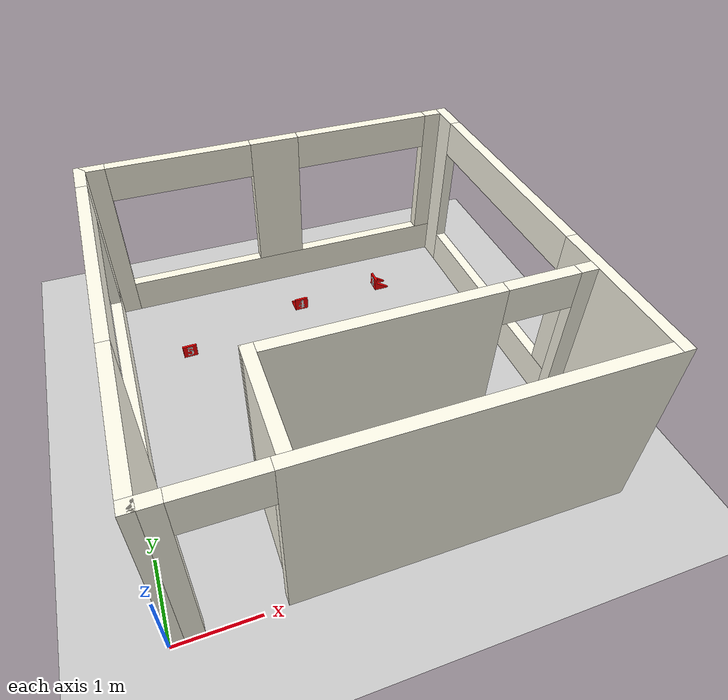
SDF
<sdf version="1.6">
 <world name="default">
  <light name="sun" type="directional">
   <pose>0 0 10 0 -0 0</pose>
   <diffuse>0.8 0.8 0.8 1</diffuse>
   <specular>0.2 0.2 0.2 1</specular>
   <attenuation>
    <range>1000</range>
    <constant>0.9</constant>
    <linear>0.01</linear>
    <quadratic>0.001</quadratic>
   </attenuation>
   <direction>-0.5 0.1 -0.9</direction>
  </light>
  <model name="ground_plane">
   <static>1</static>
   <link name="link">
    <collision name="collision">
     <geometry><plane><normal>0 0 1</normal><size>100 100</size></plane></geometry>
     <surface>
      <contact><collide_bitmask>65535</collide_bitmask></contact>
      <friction><ode><mu>100</mu><mu2>50</mu2></ode></friction>
     </surface>
    </collision>
    <visual name="visual">
     <cast_shadows>0</cast_shadows>
     <geometry><plane><normal>0 0 1</normal><size>100 100</size></plane></geometry>
     <material>
      <script><uri>file://media/materials/scripts/gazebo.material</uri><name>Gazebo/Grey</name></script>
     </material>
    </visual>
   </link>
  </model>
  <gravity>0 0 -9.8</gravity>
  <magnetic_field>6e-06 2.3e-05 -4.2e-05</magnetic_field>
  <atmosphere type="adiabatic"/>
  <physics name="default_physics" default="0" type="ode">
   <max_step_size>0.001</max_step_size>
   <real_time_factor>1</real_time_factor>
   <real_time_update_rate>1000</real_time_update_rate>
  </physics>
  <scene><ambient>0.4 0.4 0.4 1</ambient><background>0.7 0.7 0.7 1</background><shadows>1</shadows></scene>
  <audio><device>default</device></audio>
  <spherical_coordinates>
   <surface_model>EARTH_WGS84</surface_model>
   <latitude_deg>0</latitude_deg>
   <longitude_deg>0</longitude_deg>
   <elevation>0</elevation>
   <heading_deg>0</heading_deg>
  </spherical_coordinates>
  <model name="Restaurant">
   <pose>2.75893 2.75821 0 0 -0 0</pose>
   <link name="Wall_0">
    <pose>-0 2.675 0 0 -0 0</pose>
    <visual name="Wall_0_Visual_0">
     <pose>-2.5491 0 1.25 0 -0 0</pose>
     <geometry><box><size>0.401801 0.15 2.5</size></box></geometry>
     <material>
      <script><uri>file://media/materials/scripts/gazebo.material</uri><name>Gazebo/Grey</name></script>
      <ambient>1 0.984314 0.905882 1</ambient>
     </material>
     <meta><layer>0</layer></meta>
    </visual>
    <collision name="Wall_0_Collision_0">
     <geometry><box><size>0.401801 0.15 2.5</size></box></geometry>
     <pose>-2.5491 0 1.25 0 -0 0</pose>
    </collision>
    <visual name="Wall_0_Visual_1">
     <pose>0.2009 0 0.25 0 -0 0</pose>
     <geometry><box><size>5.0982 0.15 0.5</size></box></geometry>
     <material>
      <script><uri>file://media/materials/scripts/gazebo.material</uri><name>Gazebo/Grey</name></script>
      <ambient>1 0.984314 0.905882 1</ambient>
     </material>
     <meta><layer>0</layer></meta>
    </visual>
    <collision name="Wall_0_Collision_1">
     <geometry><box><size>5.0982 0.15 0.5</size></box></geometry>
     <pose>0.2009 0 0.25 0 -0 0</pose>
    </collision>
    <visual name="Wall_0_Visual_2">
     <pose>0.000751 0 1.5 0 -0 0</pose>
     <geometry><box><size>0.6979 0.15 2</size></box></geometry>
     <material>
      <script><uri>file://media/materials/scripts/gazebo.material</uri><name>Gazebo/Grey</name></script>
      <ambient>1 0.984314 0.905882 1</ambient>
     </material>
     <meta><layer>0</layer></meta>
    </visual>
    <collision name="Wall_0_Collision_2">
     <geometry><box><size>0.6979 0.15 2</size></box></geometry>
     <pose>0.000751 0 1.5 0 -0 0</pose>
    </collision>
    <visual name="Wall_0_Visual_3">
     <pose>2.54985 0 1.5 0 -0 0</pose>
     <geometry><box><size>0.400299 0.15 2</size></box></geometry>
     <material>
      <script><uri>file://media/materials/scripts/gazebo.material</uri><name>Gazebo/Grey</name></script>
      <ambient>1 0.984314 0.905882 1</ambient>
     </material>
     <meta><layer>0</layer></meta>
    </visual>
    <collision name="Wall_0_Collision_3">
     <geometry><box><size>0.400299 0.15 2</size></box></geometry>
     <pose>2.54985 0 1.5 0 -0 0</pose>
    </collision>
    <visual name="Wall_0_Visual_4">
     <pose>-1.3482 0 2.25 0 -0 0</pose>
     <geometry><box><size>2 0.15 0.5</size></box></geometry>
     <material>
      <script><uri>file://media/materials/scripts/gazebo.material</uri><name>Gazebo/Grey</name></script>
      <ambient>1 0.984314 0.905882 1</ambient>
     </material>
     <meta><layer>0</layer></meta>
    </visual>
    <collision name="Wall_0_Collision_4">
     <geometry><box><size>2 0.15 0.5</size></box></geometry>
     <pose>-1.3482 0 2.25 0 -0 0</pose>
    </collision>
    <visual name="Wall_0_Visual_5">
     <pose>1.3497 0 2.25 0 -0 0</pose>
     <geometry><box><size>2 0.15 0.5</size></box></geometry>
     <material>
      <script><uri>file://media/materials/scripts/gazebo.material</uri><name>Gazebo/Grey</name></script>
      <ambient>1 0.984314 0.905882 1</ambient>
     </material>
     <meta><layer>0</layer></meta>
    </visual>
    <collision name="Wall_0_Collision_5">
     <geometry><box><size>2 0.15 0.5</size></box></geometry>
     <pose>1.3497 0 2.25 0 -0 0</pose>
    </collision>
   </link>
   <link name="Wall_1">
    <pose>2.675 -0 0 0 -0 -1.5708</pose>
    <visual name="Wall_1_Visual_0">
     <pose>-2.50028 0 1.25 0 -0 0</pose>
     <geometry><box><size>0.499442 0.15 2.5</size></box></geometry>
     <material>
      <script><uri>file://media/materials/scripts/gazebo.material</uri><name>Gazebo/Grey</name></script>
      <ambient>1 0.988235 0.921569 1</ambient>
     </material>
     <meta><layer>0</layer></meta>
    </visual>
    <collision name="Wall_1_Collision_0">
     <geometry><box><size>0.499442 0.15 2.5</size></box></geometry>
     <pose>-2.50028 0 1.25 0 -0 0</pose>
    </collision>
    <visual name="Wall_1_Visual_1">
     <pose>0.249721 0 0.25 0 -0 0</pose>
     <geometry><box><size>5.00056 0.15 0.5</size></box></geometry>
     <material>
      <script><uri>file://media/materials/scripts/gazebo.material</uri><name>Gazebo/Grey</name></script>
      <ambient>1 0.988235 0.921569 1</ambient>
     </material>
     <meta><layer>0</layer></meta>
    </visual>
    <collision name="Wall_1_Collision_1">
     <geometry><box><size>5.00056 0.15 0.5</size></box></geometry>
     <pose>0.249721 0 0.25 0 -0 0</pose>
    </collision>
    <visual name="Wall_1_Visual_2">
     <pose>1.74972 0 1.5 0 -0 0</pose>
     <geometry><box><size>2.00056 0.15 2</size></box></geometry>
     <material>
      <script><uri>file://media/materials/scripts/gazebo.material</uri><name>Gazebo/Grey</name></script>
      <ambient>1 0.988235 0.921569 1</ambient>
     </material>
     <meta><layer>0</layer></meta>
    </visual>
    <collision name="Wall_1_Collision_2">
     <geometry><box><size>2.00056 0.15 2</size></box></geometry>
     <pose>1.74972 0 1.5 0 -0 0</pose>
    </collision>
    <visual name="Wall_1_Visual_3">
     <pose>-0.750558 0 2.25 0 -0 0</pose>
     <geometry><box><size>3 0.15 0.5</size></box></geometry>
     <material>
      <script><uri>file://media/materials/scripts/gazebo.material</uri><name>Gazebo/Grey</name></script>
      <ambient>1 0.988235 0.921569 1</ambient>
     </material>
     <meta><layer>0</layer></meta>
    </visual>
    <collision name="Wall_1_Collision_3">
     <geometry><box><size>3 0.15 0.5</size></box></geometry>
     <pose>-0.750558 0 2.25 0 -0 0</pose>
    </collision>
   </link>
   <link name="Wall_2">
    <pose>-0 -2.675 0 0 -0 3.14159</pose>
    <visual name="Wall_2_Visual_0">
     <pose>-0.634886 0 1.25 0 -0 0</pose>
     <geometry><box><size>4.23023 0.15 2.5</size></box></geometry>
     <material>
      <script><uri>file://media/materials/scripts/gazebo.material</uri><name>Gazebo/Grey</name></script>
      <ambient>1 0.988235 0.921569 1</ambient>
     </material>
     <meta><layer>0</layer></meta>
    </visual>
    <collision name="Wall_2_Collision_0">
     <geometry><box><size>4.23023 0.15 2.5</size></box></geometry>
     <pose>-0.634886 0 1.25 0 -0 0</pose>
    </collision>
    <visual name="Wall_2_Visual_1">
     <pose>2.56511 0 1.25 0 -0 0</pose>
     <geometry><box><size>0.369771 0.15 2.5</size></box></geometry>
     <material>
      <script><uri>file://media/materials/scripts/gazebo.material</uri><name>Gazebo/Grey</name></script>
      <ambient>1 0.988235 0.921569 1</ambient>
     </material>
     <meta><layer>0</layer></meta>
    </visual>
    <collision name="Wall_2_Collision_1">
     <geometry><box><size>0.369771 0.15 2.5</size></box></geometry>
     <pose>2.56511 0 1.25 0 -0 0</pose>
    </collision>
    <visual name="Wall_2_Visual_2">
     <pose>1.93023 0 2.25 0 -0 0</pose>
     <geometry><box><size>0.9 0.15 0.5</size></box></geometry>
     <material>
      <script><uri>file://media/materials/scripts/gazebo.material</uri><name>Gazebo/Grey</name></script>
      <ambient>1 0.988235 0.921569 1</ambient>
     </material>
     <meta><layer>0</layer></meta>
    </visual>
    <collision name="Wall_2_Collision_2">
     <geometry><box><size>0.9 0.15 0.5</size></box></geometry>
     <pose>1.93023 0 2.25 0 -0 0</pose>
    </collision>
   </link>
   <link name="Wall_3">
    <pose>-2.675 -0 0 0 -0 1.5708</pose>
    <visual name="Wall_3_Visual_0">
     <pose>-1.74972 0 1.25 0 -0 0</pose>
     <geometry><box><size>2.00056 0.15 2.5</size></box></geometry>
     <material>
      <script><uri>file://media/materials/scripts/gazebo.material</uri><name>Gazebo/Grey</name></script>
      <ambient>1 0.988235 0.921569 1</ambient>
     </material>
     <meta><layer>0</layer></meta>
    </visual>
    <collision name="Wall_3_Collision_0">
     <geometry><box><size>2.00056 0.15 2.5</size></box></geometry>
     <pose>-1.74972 0 1.25 0 -0 0</pose>
    </collision>
    <visual name="Wall_3_Visual_1">
     <pose>1.00028 0 0.25 0 -0 0</pose>
     <geometry><box><size>3.49944 0.15 0.5</size></box></geometry>
     <material>
      <script><uri>file://media/materials/scripts/gazebo.material</uri><name>Gazebo/Grey</name></script>
      <ambient>1 0.988235 0.921569 1</ambient>
     </material>
     <meta><layer>0</layer></meta>
    </visual>
    <collision name="Wall_3_Collision_1">
     <geometry><box><size>3.49944 0.15 0.5</size></box></geometry>
     <pose>1.00028 0 0.25 0 -0 0</pose>
    </collision>
    <visual name="Wall_3_Visual_2">
     <pose>2.50028 0 1.5 0 -0 0</pose>
     <geometry><box><size>0.499442 0.15 2</size></box></geometry>
     <material>
      <script><uri>file://media/materials/scripts/gazebo.material</uri><name>Gazebo/Grey</name></script>
      <ambient>1 0.988235 0.921569 1</ambient>
     </material>
     <meta><layer>0</layer></meta>
    </visual>
    <collision name="Wall_3_Collision_2">
     <geometry><box><size>0.499442 0.15 2</size></box></geometry>
     <pose>2.50028 0 1.5 0 -0 0</pose>
    </collision>
    <visual name="Wall_3_Visual_3">
     <pose>0.750558 0 2.25 0 -0 0</pose>
     <geometry><box><size>3 0.15 0.5</size></box></geometry>
     <material>
      <script><uri>file://media/materials/scripts/gazebo.material</uri><name>Gazebo/Grey</name></script>
      <ambient>1 0.988235 0.921569 1</ambient>
     </material>
     <meta><layer>0</layer></meta>
    </visual>
    <collision name="Wall_3_Collision_3">
     <geometry><box><size>3 0.15 0.5</size></box></geometry>
     <pose>0.750558 0 2.25 0 -0 0</pose>
    </collision>
   </link>
   <link name="Wall_7">
    <collision name="Wall_7_Collision">
     <geometry><box><size>1.5 0.15 2.5</size></box></geometry>
     <pose>0 0 1.25 0 -0 0</pose>
    </collision>
    <visual name="Wall_7_Visual">
     <pose>0 0 1.25 0 -0 0</pose>
     <geometry><box><size>1.5 0.15 2.5</size></box></geometry>
     <material>
      <script><uri>file://media/materials/scripts/gazebo.material</uri><name>Gazebo/Grey</name></script>
      <ambient>1 0.988235 0.921569 1</ambient>
     </material>
     <meta><layer>0</layer></meta>
    </visual>
    <pose>-1.35791 -1.99099 0 0 -0 1.57093</pose>
   </link>
   <link name="Wall_9">
    <pose>0.586 -1.316 0 0 -0 0</pose>
    <visual name="Wall_9_Visual_0">
     <pose>-0.562 0 1.25 0 -0 0</pose>
     <geometry><box><size>2.914 0.15 2.5</size></box></geometry>
     <material>
      <script><uri>file://media/materials/scripts/gazebo.material</uri><name>Gazebo/Grey</name></script>
      <ambient>1 0.988235 0.921569 1</ambient>
     </material>
     <meta><layer>0</layer></meta>
    </visual>
    <collision name="Wall_9_Collision_0">
     <geometry><box><size>2.914 0.15 2.5</size></box></geometry>
     <pose>-0.562 0 1.25 0 -0 0</pose>
    </collision>
    <visual name="Wall_9_Visual_1">
     <pose>1.907 0 1.25 0 -0 0</pose>
     <geometry><box><size>0.223999 0.15 2.5</size></box></geometry>
     <material>
      <script><uri>file://media/materials/scripts/gazebo.material</uri><name>Gazebo/Grey</name></script>
      <ambient>1 0.988235 0.921569 1</ambient>
     </material>
     <meta><layer>0</layer></meta>
    </visual>
    <collision name="Wall_9_Collision_1">
     <geometry><box><size>0.223999 0.15 2.5</size></box></geometry>
     <pose>1.907 0 1.25 0 -0 0</pose>
    </collision>
    <visual name="Wall_9_Visual_2">
     <pose>1.345 0 2.25 0 -0 0</pose>
     <geometry><box><size>0.9 0.15 0.5</size></box></geometry>
     <material>
      <script><uri>file://media/materials/scripts/gazebo.material</uri><name>Gazebo/Grey</name></script>
      <ambient>1 0.988235 0.921569 1</ambient>
     </material>
     <meta><layer>0</layer></meta>
    </visual>
    <collision name="Wall_9_Collision_2">
     <geometry><box><size>0.9 0.15 0.5</size></box></geometry>
     <pose>1.345 0 2.25 0 -0 0</pose>
    </collision>
   </link>
   <static>1</static>
  </model>
  <model name="all_the_tables_numbers">
   <model name="building_curve">
    <static>1</static>
    <link name="curve1">
     <visual name="visual">
      <geometry><mesh><uri>model://cookobot_gazebo/models/table_number_five/five/five.dae</uri></mesh></geometry>
     </visual>
     <collision name="collision">
      <geometry><mesh><uri>model://cookobot_gazebo/models/table_number_five/five/five.dae</uri></mesh></geometry>
     </collision>
    </link>
    <pose>-1.60519 -0.018672 0 0 0 -1.5609</pose>
   </model>
   <model name="building_curve_0">
    <static>1</static>
    <link name="curve1">
     <visual name="visual">
      <geometry><mesh><uri>model://cookobot_gazebo/models/table_number_four/four/four.dae</uri></mesh></geometry>
     </visual>
     <collision name="collision">
      <geometry><mesh><uri>model://cookobot_gazebo/models/table_number_four/four/four.dae</uri></mesh></geometry>
     </collision>
    </link>
    <pose>0.242471 0.440375 0 0 0 -1.56295</pose>
   </model>
   <model name="building_curve_1">
    <static>1</static>
    <link name="curve1">
     <visual name="visual">
      <geometry><mesh><uri>model://cookobot_gazebo/models/table_number_three/three/three.dae</uri></mesh></geometry>
     </visual>
     <collision name="collision">
      <geometry><mesh><uri>model://cookobot_gazebo/models/table_number_three/three/three.dae</uri></mesh></geometry>
     </collision>
    </link>
    <pose>1.39415 0.504257 0 0 -0 3.13723</pose>
   </model>
   <model name="building_curve_2">
    <static>1</static>
    <link name="curve1">
     <visual name="visual">
      <geometry><mesh><uri>model://cookobot_gazebo/models/table_number_two/two/two.dae</uri></mesh></geometry>
     </visual>
     <collision name="collision">
      <geometry><mesh><uri>model://cookobot_gazebo/models/table_number_two/two/two.dae</uri></mesh></geometry>
     </collision>
    </link>
    <pose>-0.031447 -0.925975 0 0 -0 3.102</pose>
   </model>
   <model name="building_curve_3">
    <static>1</static>
    <link name="curve1">
     <visual name="visual">
      <geometry><mesh><uri>model://cookobot_gazebo/models/table_number_one/one/one.dae</uri></mesh></geometry>
     </visual>
     <collision name="collision">
      <geometry><mesh><uri>model://cookobot_gazebo/models/table_number_one/one/one.dae</uri></mesh></geometry>
     </collision>
    </link>
    <pose>2.09834 -0.971505 0 0 0 -1.57318</pose>
   </model>
   <static>0</static>
   <pose>2.67407 4.04681 0 0 -0 0</pose>
  </model>
 </world>
</sdf>
